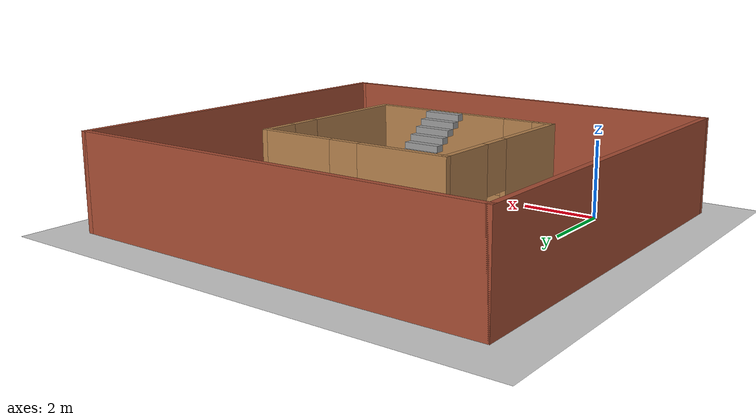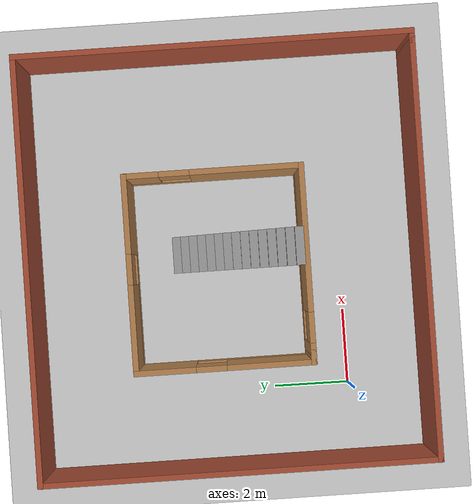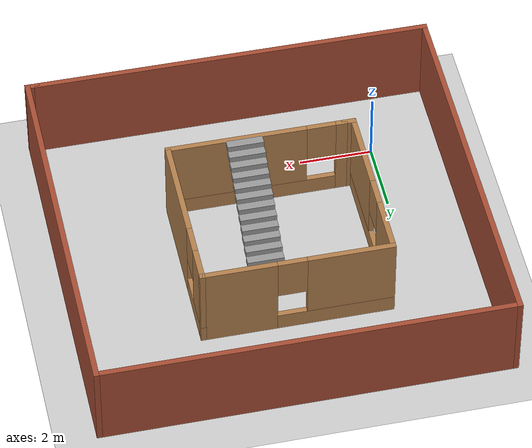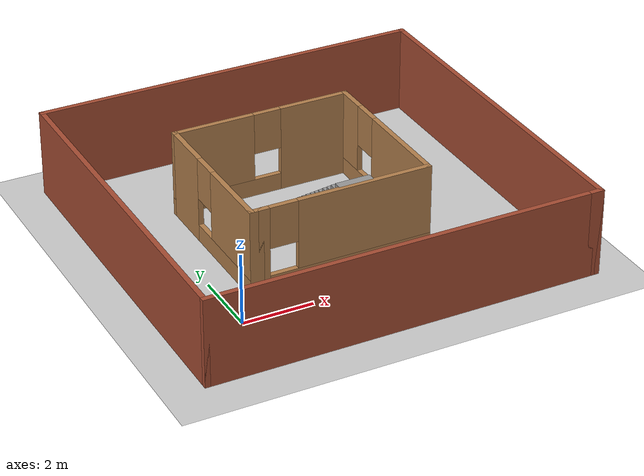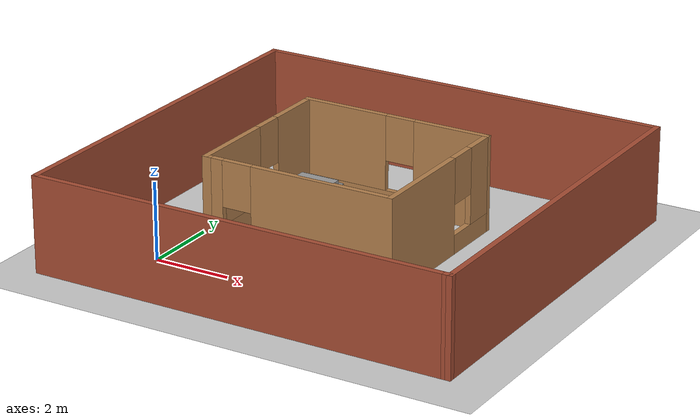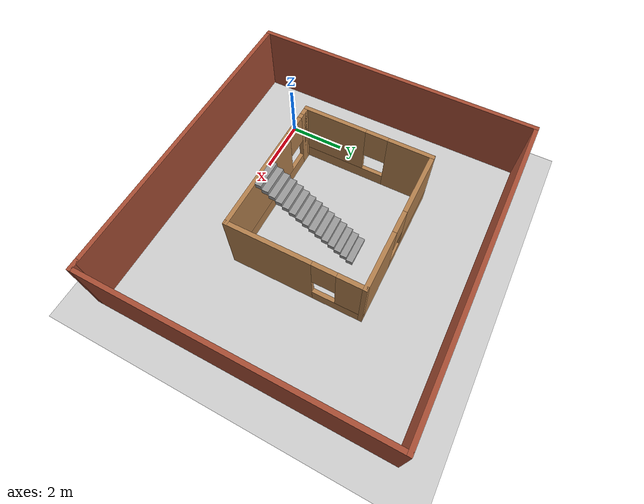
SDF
<sdf version="1.7">
 <world name="default">
  <light name="sun" type="directional">
   <pose>0 0 10 0 -0 0</pose>
   <diffuse>0.8 0.8 0.8 1</diffuse>
   <specular>0.2 0.2 0.2 1</specular>
   <attenuation>
    <range>1000</range>
    <constant>0.9</constant>
    <linear>0.01</linear>
    <quadratic>0.001</quadratic>
   </attenuation>
   <direction>-0.5 0.1 -0.9</direction>
   <spot><inner_angle>0</inner_angle><outer_angle>0</outer_angle><falloff>0</falloff></spot>
  </light>
  <model name="ground_plane">
   <static>1</static>
   <link name="link">
    <collision name="collision">
     <geometry><plane><normal>0 0 1</normal><size>100 100</size></plane></geometry>
     <surface><friction><ode><mu>100</mu><mu2>50</mu2></ode></friction></surface>
    </collision>
    <visual name="visual">
     <cast_shadows>0</cast_shadows>
     <geometry><plane><normal>0 0 1</normal><size>100 100</size></plane></geometry>
     <material>
      <script><uri>file://media/materials/scripts/gazebo.material</uri><name>Gazebo/Grey</name></script>
     </material>
    </visual>
   </link>
  </model>
  <gravity>0 0 -9.8</gravity>
  <magnetic_field>6e-06 2.3e-05 -4.2e-05</magnetic_field>
  <atmosphere type="adiabatic"/>
  <physics type="ode">
   <max_step_size>0.001</max_step_size>
   <real_time_factor>1</real_time_factor>
   <real_time_update_rate>1000</real_time_update_rate>
  </physics>
  <scene><ambient>0.4 0.4 0.4 1</ambient><background>0.7 0.7 0.7 1</background><shadows>1</shadows></scene>
  <spherical_coordinates>
   <surface_model>EARTH_WGS84</surface_model>
   <latitude_deg>0</latitude_deg>
   <longitude_deg>0</longitude_deg>
   <elevation>0</elevation>
   <heading_deg>0</heading_deg>
  </spherical_coordinates>
  <model name="fastrlap2">
   <pose>3.61 3.125 0 0 -0 0</pose>
   <link name="Stairs_0">
    <visual name="Stairs_0_Visual_0">
     <pose>0.192844 1.34287 0.083333 0 -0 0</pose>
     <geometry><box><size>1 0.233333 0.166667</size></box></geometry>
     <material>
      <script><uri>file://media/materials/scripts/gazebo.material</uri><name>Gazebo/Grey</name></script>
      <ambient>1 1 1 1</ambient>
     </material>
     <meta><layer>0</layer></meta>
    </visual>
    <collision name="Stairs_0_Collision_0">
     <geometry><box><size>1 0.233333 0.166667</size></box></geometry>
     <pose>0.192844 1.34287 0.083333 0 -0 0</pose>
    </collision>
    <visual name="Stairs_0_Visual_1">
     <pose>0.192844 1.10954 0.25 0 -0 0</pose>
     <geometry><box><size>1 0.233333 0.166667</size></box></geometry>
     <material>
      <script><uri>file://media/materials/scripts/gazebo.material</uri><name>Gazebo/Grey</name></script>
      <ambient>1 1 1 1</ambient>
     </material>
     <meta><layer>0</layer></meta>
    </visual>
    <collision name="Stairs_0_Collision_1">
     <geometry><box><size>1 0.233333 0.166667</size></box></geometry>
     <pose>0.192844 1.10954 0.25 0 -0 0</pose>
    </collision>
    <visual name="Stairs_0_Visual_2">
     <pose>0.192844 0.876204 0.416667 0 -0 0</pose>
     <geometry><box><size>1 0.233333 0.166667</size></box></geometry>
     <material>
      <script><uri>file://media/materials/scripts/gazebo.material</uri><name>Gazebo/Grey</name></script>
      <ambient>1 1 1 1</ambient>
     </material>
     <meta><layer>0</layer></meta>
    </visual>
    <collision name="Stairs_0_Collision_2">
     <geometry><box><size>1 0.233333 0.166667</size></box></geometry>
     <pose>0.192844 0.876204 0.416667 0 -0 0</pose>
    </collision>
    <visual name="Stairs_0_Visual_3">
     <pose>0.192844 0.642871 0.583333 0 -0 0</pose>
     <geometry><box><size>1 0.233333 0.166667</size></box></geometry>
     <material>
      <script><uri>file://media/materials/scripts/gazebo.material</uri><name>Gazebo/Grey</name></script>
      <ambient>1 1 1 1</ambient>
     </material>
     <meta><layer>0</layer></meta>
    </visual>
    <collision name="Stairs_0_Collision_3">
     <geometry><box><size>1 0.233333 0.166667</size></box></geometry>
     <pose>0.192844 0.642871 0.583333 0 -0 0</pose>
    </collision>
    <visual name="Stairs_0_Visual_4">
     <pose>0.192844 0.409537 0.75 0 -0 0</pose>
     <geometry><box><size>1 0.233333 0.166667</size></box></geometry>
     <material>
      <script><uri>file://media/materials/scripts/gazebo.material</uri><name>Gazebo/Grey</name></script>
      <ambient>1 1 1 1</ambient>
     </material>
     <meta><layer>0</layer></meta>
    </visual>
    <collision name="Stairs_0_Collision_4">
     <geometry><box><size>1 0.233333 0.166667</size></box></geometry>
     <pose>0.192844 0.409537 0.75 0 -0 0</pose>
    </collision>
    <visual name="Stairs_0_Visual_5">
     <pose>0.192844 0.176204 0.916667 0 -0 0</pose>
     <geometry><box><size>1 0.233333 0.166667</size></box></geometry>
     <material>
      <script><uri>file://media/materials/scripts/gazebo.material</uri><name>Gazebo/Grey</name></script>
      <ambient>1 1 1 1</ambient>
     </material>
     <meta><layer>0</layer></meta>
    </visual>
    <collision name="Stairs_0_Collision_5">
     <geometry><box><size>1 0.233333 0.166667</size></box></geometry>
     <pose>0.192844 0.176204 0.916667 0 -0 0</pose>
    </collision>
    <visual name="Stairs_0_Visual_6">
     <pose>0.192844 -0.057129 1.08333 0 -0 0</pose>
     <geometry><box><size>1 0.233333 0.166667</size></box></geometry>
     <material>
      <script><uri>file://media/materials/scripts/gazebo.material</uri><name>Gazebo/Grey</name></script>
      <ambient>1 1 1 1</ambient>
     </material>
     <meta><layer>0</layer></meta>
    </visual>
    <collision name="Stairs_0_Collision_6">
     <geometry><box><size>1 0.233333 0.166667</size></box></geometry>
     <pose>0.192844 -0.057129 1.08333 0 -0 0</pose>
    </collision>
    <visual name="Stairs_0_Visual_7">
     <pose>0.192844 -0.290463 1.25 0 -0 0</pose>
     <geometry><box><size>1 0.233333 0.166667</size></box></geometry>
     <material>
      <script><uri>file://media/materials/scripts/gazebo.material</uri><name>Gazebo/Grey</name></script>
      <ambient>1 1 1 1</ambient>
     </material>
     <meta><layer>0</layer></meta>
    </visual>
    <collision name="Stairs_0_Collision_7">
     <geometry><box><size>1 0.233333 0.166667</size></box></geometry>
     <pose>0.192844 -0.290463 1.25 0 -0 0</pose>
    </collision>
    <visual name="Stairs_0_Visual_8">
     <pose>0.192844 -0.523796 1.41667 0 -0 0</pose>
     <geometry><box><size>1 0.233333 0.166667</size></box></geometry>
     <material>
      <script><uri>file://media/materials/scripts/gazebo.material</uri><name>Gazebo/Grey</name></script>
      <ambient>1 1 1 1</ambient>
     </material>
     <meta><layer>0</layer></meta>
    </visual>
    <collision name="Stairs_0_Collision_8">
     <geometry><box><size>1 0.233333 0.166667</size></box></geometry>
     <pose>0.192844 -0.523796 1.41667 0 -0 0</pose>
    </collision>
    <visual name="Stairs_0_Visual_9">
     <pose>0.192844 -0.757129 1.58333 0 -0 0</pose>
     <geometry><box><size>1 0.233333 0.166667</size></box></geometry>
     <material>
      <script><uri>file://media/materials/scripts/gazebo.material</uri><name>Gazebo/Grey</name></script>
      <ambient>1 1 1 1</ambient>
     </material>
     <meta><layer>0</layer></meta>
    </visual>
    <collision name="Stairs_0_Collision_9">
     <geometry><box><size>1 0.233333 0.166667</size></box></geometry>
     <pose>0.192844 -0.757129 1.58333 0 -0 0</pose>
    </collision>
    <visual name="Stairs_0_Visual_10">
     <pose>0.192844 -0.990463 1.75 0 -0 0</pose>
     <geometry><box><size>1 0.233333 0.166667</size></box></geometry>
     <material>
      <script><uri>file://media/materials/scripts/gazebo.material</uri><name>Gazebo/Grey</name></script>
      <ambient>1 1 1 1</ambient>
     </material>
     <meta><layer>0</layer></meta>
    </visual>
    <collision name="Stairs_0_Collision_10">
     <geometry><box><size>1 0.233333 0.166667</size></box></geometry>
     <pose>0.192844 -0.990463 1.75 0 -0 0</pose>
    </collision>
    <visual name="Stairs_0_Visual_11">
     <pose>0.192844 -1.2238 1.91667 0 -0 0</pose>
     <geometry><box><size>1 0.233333 0.166667</size></box></geometry>
     <material>
      <script><uri>file://media/materials/scripts/gazebo.material</uri><name>Gazebo/Grey</name></script>
      <ambient>1 1 1 1</ambient>
     </material>
     <meta><layer>0</layer></meta>
    </visual>
    <collision name="Stairs_0_Collision_11">
     <geometry><box><size>1 0.233333 0.166667</size></box></geometry>
     <pose>0.192844 -1.2238 1.91667 0 -0 0</pose>
    </collision>
    <visual name="Stairs_0_Visual_12">
     <pose>0.192844 -1.45713 2.08333 0 -0 0</pose>
     <geometry><box><size>1 0.233333 0.166667</size></box></geometry>
     <material>
      <script><uri>file://media/materials/scripts/gazebo.material</uri><name>Gazebo/Grey</name></script>
      <ambient>1 1 1 1</ambient>
     </material>
     <meta><layer>0</layer></meta>
    </visual>
    <collision name="Stairs_0_Collision_12">
     <geometry><box><size>1 0.233333 0.166667</size></box></geometry>
     <pose>0.192844 -1.45713 2.08333 0 -0 0</pose>
    </collision>
    <visual name="Stairs_0_Visual_13">
     <pose>0.192844 -1.69046 2.25 0 -0 0</pose>
     <geometry><box><size>1 0.233333 0.166667</size></box></geometry>
     <material>
      <script><uri>file://media/materials/scripts/gazebo.material</uri><name>Gazebo/Grey</name></script>
      <ambient>1 1 1 1</ambient>
     </material>
     <meta><layer>0</layer></meta>
    </visual>
    <collision name="Stairs_0_Collision_13">
     <geometry><box><size>1 0.233333 0.166667</size></box></geometry>
     <pose>0.192844 -1.69046 2.25 0 -0 0</pose>
    </collision>
    <visual name="Stairs_0_Visual_14">
     <pose>0.192844 -1.9238 2.41667 0 -0 0</pose>
     <geometry><box><size>1 0.233333 0.166667</size></box></geometry>
     <material>
      <script><uri>file://media/materials/scripts/gazebo.material</uri><name>Gazebo/Grey</name></script>
      <ambient>1 1 1 1</ambient>
     </material>
     <meta><layer>0</layer></meta>
    </visual>
    <collision name="Stairs_0_Collision_14">
     <geometry><box><size>1 0.233333 0.166667</size></box></geometry>
     <pose>0.192844 -1.9238 2.41667 0 -0 0</pose>
    </collision>
   </link>
   <link name="Wall_1">
    <collision name="Wall_1_Collision">
     <geometry><box><size>11 0.15 2.5</size></box></geometry>
     <pose>0 0 1.25 0 -0 0</pose>
    </collision>
    <visual name="Wall_1_Visual">
     <pose>0 0 1.25 0 -0 0</pose>
     <geometry><box><size>11 0.15 2.5</size></box></geometry>
     <material>
      <script><uri>file://media/materials/scripts/gazebo.material</uri><name>Gazebo/Bricks</name></script>
      <ambient>1 1 1 1</ambient>
     </material>
     <meta><layer>0</layer></meta>
    </visual>
    <pose>-0.125 -5.175 0 0 -0 0</pose>
   </link>
   <link name="Wall_12">
    <collision name="Wall_12_Collision">
     <geometry><box><size>10.5 0.15 2.5</size></box></geometry>
     <pose>0 0 1.25 0 -0 0</pose>
    </collision>
    <visual name="Wall_12_Visual">
     <pose>0 0 1.25 0 -0 0</pose>
     <geometry><box><size>10.5 0.15 2.5</size></box></geometry>
     <material>
      <script><uri>file://media/materials/scripts/gazebo.material</uri><name>Gazebo/Bricks</name></script>
      <ambient>1 1 1 1</ambient>
     </material>
     <meta><layer>0</layer></meta>
    </visual>
    <pose>-5.55 0 0 0 -0 1.5708</pose>
   </link>
   <link name="Wall_13">
    <collision name="Wall_13_Collision">
     <geometry><box><size>11.25 0.15 2.5</size></box></geometry>
     <pose>0 0 1.25 0 -0 0</pose>
    </collision>
    <visual name="Wall_13_Visual">
     <pose>0 0 1.25 0 -0 0</pose>
     <geometry><box><size>11.25 0.15 2.5</size></box></geometry>
     <material>
      <script><uri>file://media/materials/scripts/gazebo.material</uri><name>Gazebo/Bricks</name></script>
      <ambient>1 1 1 1</ambient>
     </material>
     <meta><layer>0</layer></meta>
    </visual>
    <pose>-0 5.175 0 0 -0 0</pose>
   </link>
   <link name="Wall_14">
    <collision name="Wall_14_Collision">
     <geometry><box><size>10.5 0.15 2.5</size></box></geometry>
     <pose>0 0 1.25 0 -0 0</pose>
    </collision>
    <visual name="Wall_14_Visual">
     <pose>0 0 1.25 0 -0 0</pose>
     <geometry><box><size>10.5 0.15 2.5</size></box></geometry>
     <material>
      <script><uri>file://media/materials/scripts/gazebo.material</uri><name>Gazebo/Bricks</name></script>
      <ambient>1 1 1 1</ambient>
     </material>
     <meta><layer>0</layer></meta>
    </visual>
    <pose>5.55 0 0 0 -0 -1.5708</pose>
   </link>
   <link name="Wall_15">
    <collision name="Wall_15_Collision">
     <geometry><box><size>0.4 0.15 2.5</size></box></geometry>
     <pose>0 0 1.25 0 -0 0</pose>
    </collision>
    <visual name="Wall_15_Visual">
     <pose>0 0 1.25 0 -0 0</pose>
     <geometry><box><size>0.4 0.15 2.5</size></box></geometry>
     <material>
      <script><uri>file://media/materials/scripts/gazebo.material</uri><name>Gazebo/Bricks</name></script>
      <ambient>1 1 1 1</ambient>
     </material>
     <meta><layer>0</layer></meta>
    </visual>
    <pose>5.425 -5.175 0 0 -0 -3.14159</pose>
   </link>
   <link name="Wall_4">
    <pose>-0.154642 -2.08647 0 0 -0 0</pose>
    <visual name="Wall_4_Visual_0">
     <pose>-2.34027 0 1.25 0 -0 0</pose>
     <geometry><box><size>0.31947 0.15 2.5</size></box></geometry>
     <material>
      <script><uri>file://media/materials/scripts/gazebo.material</uri><name>Gazebo/Wood</name></script>
      <ambient>1 1 1 1</ambient>
     </material>
     <meta><layer>0</layer></meta>
    </visual>
    <collision name="Wall_4_Collision_0">
     <geometry><box><size>0.31947 0.15 2.5</size></box></geometry>
     <pose>-2.34027 0 1.25 0 -0 0</pose>
    </collision>
    <visual name="Wall_4_Visual_1">
     <pose>0.159735 0 0.25 0 -0 0</pose>
     <geometry><box><size>4.68053 0.15 0.5</size></box></geometry>
     <material>
      <script><uri>file://media/materials/scripts/gazebo.material</uri><name>Gazebo/Wood</name></script>
      <ambient>1 1 1 1</ambient>
     </material>
     <meta><layer>0</layer></meta>
    </visual>
    <collision name="Wall_4_Collision_1">
     <geometry><box><size>4.68053 0.15 0.5</size></box></geometry>
     <pose>0.159735 0 0.25 0 -0 0</pose>
    </collision>
    <visual name="Wall_4_Visual_2">
     <pose>0.559735 0 1.5 0 -0 0</pose>
     <geometry><box><size>3.88053 0.15 2</size></box></geometry>
     <material>
      <script><uri>file://media/materials/scripts/gazebo.material</uri><name>Gazebo/Wood</name></script>
      <ambient>1 1 1 1</ambient>
     </material>
     <meta><layer>0</layer></meta>
    </visual>
    <collision name="Wall_4_Collision_2">
     <geometry><box><size>3.88053 0.15 2</size></box></geometry>
     <pose>0.559735 0 1.5 0 -0 0</pose>
    </collision>
    <visual name="Wall_4_Visual_3">
     <pose>-1.78053 0 1.9 0 -0 0</pose>
     <geometry><box><size>0.8 0.15 1.2</size></box></geometry>
     <material>
      <script><uri>file://media/materials/scripts/gazebo.material</uri><name>Gazebo/Wood</name></script>
      <ambient>1 1 1 1</ambient>
     </material>
     <meta><layer>0</layer></meta>
    </visual>
    <collision name="Wall_4_Collision_3">
     <geometry><box><size>0.8 0.15 1.2</size></box></geometry>
     <pose>-1.78053 0 1.9 0 -0 0</pose>
    </collision>
   </link>
   <link name="Wall_6">
    <pose>2.27036 0.213535 0 0 -0 1.5708</pose>
    <visual name="Wall_6_Visual_0">
     <pose>-0.887754 0 1.25 0 -0 0</pose>
     <geometry><box><size>2.97449 0.15 2.5</size></box></geometry>
     <material>
      <script><uri>file://media/materials/scripts/gazebo.material</uri><name>Gazebo/Wood</name></script>
      <ambient>1 1 1 1</ambient>
     </material>
     <meta><layer>0</layer></meta>
    </visual>
    <collision name="Wall_6_Collision_0">
     <geometry><box><size>2.97449 0.15 2.5</size></box></geometry>
     <pose>-0.887754 0 1.25 0 -0 0</pose>
    </collision>
    <visual name="Wall_6_Visual_1">
     <pose>1.48725 0 0.25 0 -0 0</pose>
     <geometry><box><size>1.77551 0.15 0.5</size></box></geometry>
     <material>
      <script><uri>file://media/materials/scripts/gazebo.material</uri><name>Gazebo/Wood</name></script>
      <ambient>1 1 1 1</ambient>
     </material>
     <meta><layer>0</layer></meta>
    </visual>
    <collision name="Wall_6_Collision_1">
     <geometry><box><size>1.77551 0.15 0.5</size></box></geometry>
     <pose>1.48725 0 0.25 0 -0 0</pose>
    </collision>
    <visual name="Wall_6_Visual_2">
     <pose>1.88725 0 1.5 0 -0 0</pose>
     <geometry><box><size>0.975509 0.15 2</size></box></geometry>
     <material>
      <script><uri>file://media/materials/scripts/gazebo.material</uri><name>Gazebo/Wood</name></script>
      <ambient>1 1 1 1</ambient>
     </material>
     <meta><layer>0</layer></meta>
    </visual>
    <collision name="Wall_6_Collision_2">
     <geometry><box><size>0.975509 0.15 2</size></box></geometry>
     <pose>1.88725 0 1.5 0 -0 0</pose>
    </collision>
    <visual name="Wall_6_Visual_3">
     <pose>0.999491 0 1.9 0 -0 0</pose>
     <geometry><box><size>0.8 0.15 1.2</size></box></geometry>
     <material>
      <script><uri>file://media/materials/scripts/gazebo.material</uri><name>Gazebo/Wood</name></script>
      <ambient>1 1 1 1</ambient>
     </material>
     <meta><layer>0</layer></meta>
    </visual>
    <collision name="Wall_6_Collision_3">
     <geometry><box><size>0.8 0.15 1.2</size></box></geometry>
     <pose>0.999491 0 1.9 0 -0 0</pose>
    </collision>
   </link>
   <link name="Wall_7">
    <pose>-0.279642 2.51354 0 0 -0 3.14159</pose>
    <visual name="Wall_7_Visual_0">
     <pose>-1.58683 0 1.25 0 -0 0</pose>
     <geometry><box><size>2.07634 0.15 2.5</size></box></geometry>
     <material>
      <script><uri>file://media/materials/scripts/gazebo.material</uri><name>Gazebo/Wood</name></script>
      <ambient>1 1 1 1</ambient>
     </material>
     <meta><layer>0</layer></meta>
    </visual>
    <collision name="Wall_7_Collision_0">
     <geometry><box><size>2.07634 0.15 2.5</size></box></geometry>
     <pose>-1.58683 0 1.25 0 -0 0</pose>
    </collision>
    <visual name="Wall_7_Visual_1">
     <pose>1.03817 0 0.25 0 -0 0</pose>
     <geometry><box><size>3.17366 0.15 0.5</size></box></geometry>
     <material>
      <script><uri>file://media/materials/scripts/gazebo.material</uri><name>Gazebo/Wood</name></script>
      <ambient>1 1 1 1</ambient>
     </material>
     <meta><layer>0</layer></meta>
    </visual>
    <collision name="Wall_7_Collision_1">
     <geometry><box><size>3.17366 0.15 0.5</size></box></geometry>
     <pose>1.03817 0 0.25 0 -0 0</pose>
    </collision>
    <visual name="Wall_7_Visual_2">
     <pose>1.43817 0 1.5 0 -0 0</pose>
     <geometry><box><size>2.37366 0.15 2</size></box></geometry>
     <material>
      <script><uri>file://media/materials/scripts/gazebo.material</uri><name>Gazebo/Wood</name></script>
      <ambient>1 1 1 1</ambient>
     </material>
     <meta><layer>0</layer></meta>
    </visual>
    <collision name="Wall_7_Collision_2">
     <geometry><box><size>2.37366 0.15 2</size></box></geometry>
     <pose>1.43817 0 1.5 0 -0 0</pose>
    </collision>
    <visual name="Wall_7_Visual_3">
     <pose>-0.148657 0 1.9 0 -0 0</pose>
     <geometry><box><size>0.8 0.15 1.2</size></box></geometry>
     <material>
      <script><uri>file://media/materials/scripts/gazebo.material</uri><name>Gazebo/Wood</name></script>
      <ambient>1 1 1 1</ambient>
     </material>
     <meta><layer>0</layer></meta>
    </visual>
    <collision name="Wall_7_Collision_3">
     <geometry><box><size>0.8 0.15 1.2</size></box></geometry>
     <pose>-0.148657 0 1.9 0 -0 0</pose>
    </collision>
   </link>
   <link name="Wall_8">
    <pose>-2.82964 0.213535 0 0 -0 -1.5708</pose>
    <visual name="Wall_8_Visual_0">
     <pose>-1.56342 0 1.25 0 -0 0</pose>
     <geometry><box><size>1.62316 0.15 2.5</size></box></geometry>
     <material>
      <script><uri>file://media/materials/scripts/gazebo.material</uri><name>Gazebo/Wood</name></script>
      <ambient>1 1 1 1</ambient>
     </material>
     <meta><layer>0</layer></meta>
    </visual>
    <collision name="Wall_8_Collision_0">
     <geometry><box><size>1.62316 0.15 2.5</size></box></geometry>
     <pose>-1.56342 0 1.25 0 -0 0</pose>
    </collision>
    <visual name="Wall_8_Visual_1">
     <pose>0.811583 0 0.25 0 -0 0</pose>
     <geometry><box><size>3.12683 0.15 0.5</size></box></geometry>
     <material>
      <script><uri>file://media/materials/scripts/gazebo.material</uri><name>Gazebo/Wood</name></script>
      <ambient>1 1 1 1</ambient>
     </material>
     <meta><layer>0</layer></meta>
    </visual>
    <collision name="Wall_8_Collision_1">
     <geometry><box><size>3.12683 0.15 0.5</size></box></geometry>
     <pose>0.811583 0 0.25 0 -0 0</pose>
    </collision>
    <visual name="Wall_8_Visual_2">
     <pose>1.21158 0 1.5 0 -0 0</pose>
     <geometry><box><size>2.32683 0.15 2</size></box></geometry>
     <material>
      <script><uri>file://media/materials/scripts/gazebo.material</uri><name>Gazebo/Wood</name></script>
      <ambient>1 1 1 1</ambient>
     </material>
     <meta><layer>0</layer></meta>
    </visual>
    <collision name="Wall_8_Collision_2">
     <geometry><box><size>2.32683 0.15 2</size></box></geometry>
     <pose>1.21158 0 1.5 0 -0 0</pose>
    </collision>
    <visual name="Wall_8_Visual_3">
     <pose>-0.351835 0 1.9 0 -0 0</pose>
     <geometry><box><size>0.8 0.15 1.2</size></box></geometry>
     <material>
      <script><uri>file://media/materials/scripts/gazebo.material</uri><name>Gazebo/Wood</name></script>
      <ambient>1 1 1 1</ambient>
     </material>
     <meta><layer>0</layer></meta>
    </visual>
    <collision name="Wall_8_Collision_3">
     <geometry><box><size>0.8 0.15 1.2</size></box></geometry>
     <pose>-0.351835 0 1.9 0 -0 0</pose>
    </collision>
   </link>
   <link name="Wall_9">
    <collision name="Wall_9_Collision">
     <geometry><box><size>0.4 0.15 2.5</size></box></geometry>
     <pose>0 0 1.25 0 -0 0</pose>
    </collision>
    <visual name="Wall_9_Visual">
     <pose>0 0 1.25 0 -0 0</pose>
     <geometry><box><size>0.4 0.15 2.5</size></box></geometry>
     <material>
      <script><uri>file://media/materials/scripts/gazebo.material</uri><name>Gazebo/Wood</name></script>
      <ambient>1 1 1 1</ambient>
     </material>
     <meta><layer>0</layer></meta>
    </visual>
    <pose>-2.70464 -2.08647 0 0 -0 0</pose>
   </link>
   <static>1</static>
  </model>
 </world>
</sdf>
